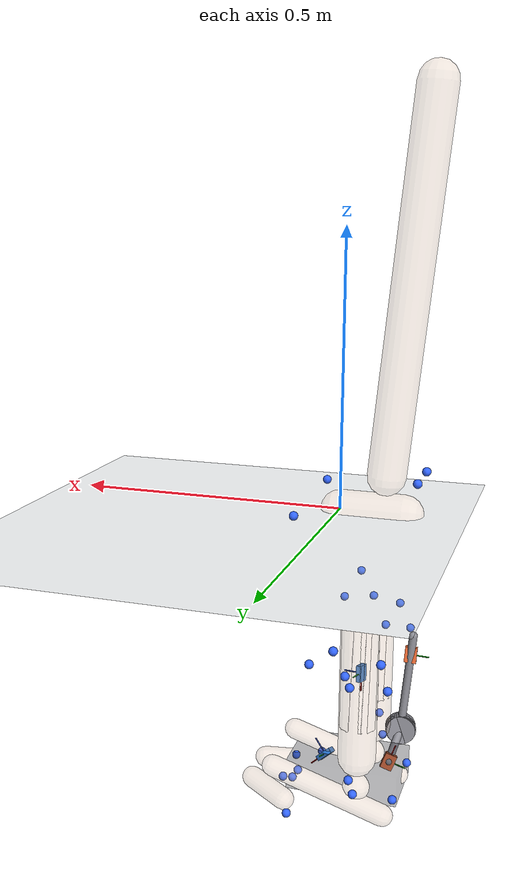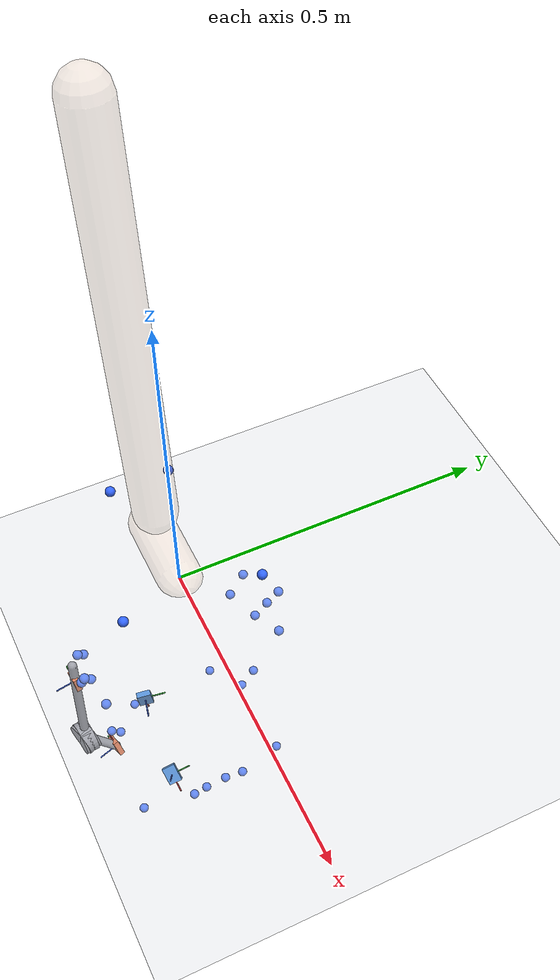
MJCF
<mujoco model="AB27">
  <compiler angle="radian" autolimits="true"/>
  <option timestep="0.005" gravity="0 0 -9.81"><flag contact="disable"/></option>
  <visual><global offwidth="1600" offheight="1200"/>
    <headlight ambient="0.55 0.55 0.55" diffuse="0.6 0.6 0.6"/></visual>
  <default><joint limited="false" damping="0"/><geom contype="0" conaffinity="0"/></default>
  <asset>
    <texture name="grid" type="2d" builtin="checker" rgb1="0.75 0.77 0.8" rgb2="0.85 0.87 0.9" width="512" height="512"/>
    <material name="grid" texture="grid" texrepeat="2 2" texuniform="true"/>
    <material name="skin" rgba="0.85 0.72 0.62 0.28"/>
  </asset>
  <worldbody>
    <light pos="0 0 4" dir="0 0 -1"/>
    <geom name="floor" type="plane" size="0 0 0.05" material="grid"/>
    <body name="pelvis" pos="0 0 0" quat="1 0 0 0">
      <joint name="pelvis_tx" type="slide" axis="1 0 0"/>
      <joint name="pelvis_ty" type="slide" axis="0 0 1"/>
      <joint name="pelvis_tz" type="slide" axis="0 -1 0"/>
      <joint name="pelvis_tilt" type="hinge" axis="0 -1 0"/>
      <joint name="pelvis_list" type="hinge" axis="1 0 0"/>
      <joint name="pelvis_rotation" type="hinge" axis="0 0 1"/>
      <inertial pos="-0.058046514 0 0" mass="11.385" diaginertia="0.11385026 0.11385026 0.11385026"/>
      <geom type="capsule" fromto="0 0 0 -0.11609303 0 0" size="0.035" material="skin" mass="0"/>
      <site name="m_R_ASIS" pos="0.052128746 -0.10849604 0.023263242" size="0.008" rgba="0.2 0.4 1 1" group="2"/>
      <site name="m_L_ASIS" pos="0.055594639 0.11089393 0.011455471" size="0.008" rgba="0.2 0.4 1 1" group="2"/>
      <site name="m_L_PSIS" pos="-0.1456863 0.047470997 0.070045221" size="0.008" rgba="0.2 0.4 1 1" group="2"/>
      <site name="m_R_PSIS" pos="-0.14553334 -0.047669934 0.068743078" size="0.008" rgba="0.2 0.4 1 1" group="2"/>
      <body name="femur_r" pos="-0.058046514 -0.068555643 -0.054269796" quat="1 0 0 0">
        <joint name="hip_flexion_r" type="hinge" axis="0 -1 0"/>
        <joint name="hip_adduction_r" type="hinge" axis="1 0 0"/>
        <joint name="hip_rotation_r" type="hinge" axis="0 0 1"/>
        <inertial pos="0 0 -0.16503786" mass="8.99182" diaginertia="0.08991821 0.08991821 0.08991821"/>
        <geom type="capsule" fromto="0 0 0 0 0 -0.33007572" size="0.035" material="skin" mass="0"/>
        <site name="m_R_Thigh_Upper" pos="0.052900902 -0.10512883 -0.12094729" size="0.008" rgba="0.2 0.4 1 1" group="2"/>
        <site name="m_R_Thigh_Front" pos="0.081215461 -0.085263008 -0.17224676" size="0.008" rgba="0.2 0.4 1 1" group="2"/>
        <site name="m_R_Thigh_Rear" pos="0.026873185 -0.10703871 -0.17157331" size="0.008" rgba="0.2 0.4 1 1" group="2"/>
        <site name="m_R_Knee_Lat" pos="0.00083167959 -0.072767124 -0.40669497" size="0.008" rgba="0.2 0.4 1 1" group="2"/>
        <body name="tibia_r" pos="0 0 0" quat="1 0 0 0">
<geom name="gt_shank_axis_x" type="capsule" size="0.0012" fromto="0.02690 -0.00820 -0.29580 0.02550 -0.00355 -0.33046" rgba="1 0.1 0.1 1" contype="0" conaffinity="0" mass="0"/>
<geom name="gt_shank_axis_y" type="capsule" size="0.0012" fromto="0.02690 -0.00820 -0.29580 0.03470 0.02566 -0.29157" rgba="0.1 0.8 0.1 1" contype="0" conaffinity="0" mass="0"/>
<geom name="gt_shank_axis_z" type="capsule" size="0.0012" fromto="0.02690 -0.00820 -0.29580 0.06099 -0.01576 -0.29819" rgba="0.1 0.3 1 1" contype="0" conaffinity="0" mass="0"/>
<geom name="exo_shank_axis_x" type="capsule" size="0.0012" fromto="-0.05196 -0.10600 -0.28706 -0.05411 -0.10934 -0.25229" rgba="1 0.1 0.1 1" contype="0" conaffinity="0" mass="0"/>
<geom name="exo_shank_axis_y" type="capsule" size="0.0012" fromto="-0.05196 -0.10600 -0.28706 -0.08671 -0.10928 -0.28953" rgba="0.1 0.8 0.1 1" contype="0" conaffinity="0" mass="0"/>
<geom name="exo_shank_axis_z" type="capsule" size="0.0012" fromto="-0.05196 -0.10600 -0.28706 -0.04846 -0.14069 -0.29018" rgba="0.1 0.3 1 1" contype="0" conaffinity="0" mass="0"/>
<geom name="encoder_shank" type="cylinder" size="0.03 0.012" fromto="-0.03426 -0.12661 -0.45483 -0.03714 -0.10279 -0.45477" rgba="0.55 0.55 0.58 1" contype="0" conaffinity="0" mass="0"/>
<geom name="strut_shank" type="capsule" size="0.008" fromto="-0.03570 -0.11470 -0.45480 -0.05602 -0.10383 -0.24513" rgba="0.55 0.55 0.58 1" contype="0" conaffinity="0" mass="0"/>
          <joint name="knee_r_translation1" type="slide" axis="1 0 0"/>
          <joint name="knee_r_translation2" type="slide" axis="0 0 1"/>
          <joint name="knee_angle_r" type="hinge" axis="0 -1 0"/>
          <inertial pos="0 0 -0.19744877" mass="3.5841" diaginertia="0.035841031 0.035841031 0.035841031"/>
          <geom type="capsule" fromto="0 0 0 0 0 -0.39489754" size="0.035" material="skin" mass="0"/>
          <site name="m_R_Shank_Upper" pos="-0.028618852 -0.094809408 -0.17610498" size="0.008" rgba="0.2 0.4 1 1" group="2"/>
          <site name="m_R_Shank_Front" pos="-0.0031336685 -0.086145252 -0.22174559" size="0.008" rgba="0.2 0.4 1 1" group="2"/>
          <site name="m_R_Shank_Rear" pos="-0.053094801 -0.081168583 -0.21976924" size="0.008" rgba="0.2 0.4 1 1" group="2"/>
          <site name="m_R_Ankle_Lat" pos="-0.010603552 -0.054767977 -0.44354602" size="0.008" rgba="0.2 0.4 1 1" group="2"/>
          <site name="gt_shank_imu" type="box" size="0.016 0.012 0.005" pos="0.0269 -0.0082 -0.2958" quat="0.68172775 0.12351395 0.7203503 -0.032970024" rgba="0.16 0.47 0.84 1" group="1"/>
          <site name="exo_shank_imu" type="box" size="0.016 0.012 0.005" pos="-0.051956 -0.106 -0.287064" quat="0.43470134 0.52945193 -0.51398063 0.51627445" rgba="0.92 0.41 0.20 1" group="1"/>
          <body name="talus_r" pos="0 0 -0.45475614" quat="1 0 0 0">
            <joint name="ankle_angle_r" type="hinge" axis="-0.10501355 -0.97912632 -0.17402245"/>
            <inertial pos="0 0 0" mass="0.0966717" diaginertia="0.00096671695 0.00096671695 0.00096671695"/>
            <geom type="sphere" size="0.025" material="skin" mass="0"/>
            <body name="calcn_r" pos="-0.051577807 -0.0083759736 -0.044365163" quat="1 0 0 0">
<geom name="gt_foot_axis_x" type="capsule" size="0.0012" fromto="0.14400 0.00960 0.02340 0.17041 0.01429 0.00092" rgba="1 0.1 0.1 1" contype="0" conaffinity="0" mass="0"/>
<geom name="gt_foot_axis_y" type="capsule" size="0.0012" fromto="0.14400 0.00960 0.02340 0.14761 0.04259 0.03451" rgba="0.1 0.8 0.1 1" contype="0" conaffinity="0" mass="0"/>
<geom name="gt_foot_axis_z" type="capsule" size="0.0012" fromto="0.14400 0.00960 0.02340 0.16668 -0.00110 0.04781" rgba="0.1 0.3 1 1" contype="0" conaffinity="0" mass="0"/>
<geom name="exo_foot_axis_x" type="capsule" size="0.0012" fromto="0.02932 -0.05779 -0.00784 0.01748 -0.06476 0.02435" rgba="1 0.1 0.1 1" contype="0" conaffinity="0" mass="0"/>
<geom name="exo_foot_axis_y" type="capsule" size="0.0012" fromto="0.02932 -0.05779 -0.00784 -0.00252 -0.06409 -0.02092" rgba="0.1 0.8 0.1 1" contype="0" conaffinity="0" mass="0"/>
<geom name="exo_foot_axis_z" type="capsule" size="0.0012" fromto="0.02932 -0.05779 -0.00784 0.03772 -0.09150 -0.01205" rgba="0.1 0.3 1 1" contype="0" conaffinity="0" mass="0"/>
<geom name="encoder_foot" type="cylinder" size="0.03 0.012" fromto="0.01928 -0.11776 0.04365 0.01232 -0.09484 0.04515" rgba="0.55 0.55 0.58 1" contype="0" conaffinity="0" mass="0"/>
<geom name="strut_foot" type="capsule" size="0.008" fromto="0.01580 -0.10630 0.04440 0.02932 -0.05779 -0.00784" rgba="0.55 0.55 0.58 1" contype="0" conaffinity="0" mass="0"/>
<geom name="shoe" type="box" pos="0.09888 0.00080 -0.00015" size="0.10897 0.06817 0.03000" rgba="0.15 0.15 0.18 0.35" contype="0" conaffinity="0" mass="0"/>
              <joint name="subtalar_angle_r" type="hinge" axis="0.78717961 0.12094949 0.60474746"/>
              <inertial pos="0.10493328 0 0.031479985" mass="1.2084" diaginertia="0.012083962 0.012083962 0.012083962"/>
              <geom type="capsule" fromto="0 0 0 0.20986657 0 0.062959971" size="0.02" material="skin" mass="0"/>
              <site name="m_R_Heel" pos="-0.017096098 0.0011897061 0.028407868" size="0.008" rgba="0.2 0.4 1 1" group="2"/>
              <site name="m_R_Toe_Lat" pos="0.16787386 -0.057761168 -0.010151365" size="0.008" rgba="0.2 0.4 1 1" group="2"/>
              <site name="m_R_Toe_Med" pos="0.18675358 0.058579294 0.0064987863" size="0.008" rgba="0.2 0.4 1 1" group="2"/>
              <site name="m_R_Toe_Tip" pos="0.19784758 0.030826674 0.023150082" size="0.008" rgba="0.2 0.4 1 1" group="2"/>
              <site name="gt_foot_imu" type="box" size="0.016 0.012 0.005" pos="0.144 0.0096 0.0234" quat="0.92124141 0.16915735 0.35018603 0.008355301" rgba="0.16 0.47 0.84 1" group="1"/>
              <site name="exo_foot_imu" type="box" size="0.016 0.012 0.005" pos="0.029323 -0.057786 -0.007844" quat="0.30059307 0.49041642 -0.56536274 0.59118568" rgba="0.92 0.41 0.20 1" group="1"/>
              <body name="toes_r" pos="0.18762071 -0.0011332795 -0.0020986657" quat="1 0 0 0">
                <joint name="mtp_angle_r" type="hinge" axis="-0.5809544 -0.81393611 0"/>
                <inertial pos="0.036306916 0.018363325 0.0062959971" mass="0.209391" diaginertia="0.0020939089 0.0020939089 0.0020939089"/>
                <geom type="capsule" fromto="0 0 0 0.072613833 0.03672665 0.012591994" size="0.02" material="skin" mass="0"/>
              </body>
            </body>
          </body>
        </body>
      </body>
      <body name="femur_l" pos="-0.058046514 0.068555643 -0.054269796" quat="1 0 0 0">
        <joint name="hip_flexion_l" type="hinge" axis="0 -1 0"/>
        <joint name="hip_adduction_l" type="hinge" axis="-1 0 0"/>
        <joint name="hip_rotation_l" type="hinge" axis="0 0 -1"/>
        <inertial pos="0 0 -0.16503786" mass="8.99182" diaginertia="0.08991821 0.08991821 0.08991821"/>
        <geom type="capsule" fromto="0 0 0 0 0 -0.33007572" size="0.035" material="skin" mass="0"/>
        <site name="m_L_Thigh_Upper" pos="0.021092888 0.11288699 -0.14325795" size="0.008" rgba="0.2 0.4 1 1" group="2"/>
        <site name="m_L_Thigh_Front" pos="0.068513846 0.091036969 -0.183141" size="0.008" rgba="0.2 0.4 1 1" group="2"/>
        <site name="m_L_Thigh_Rear" pos="0.0030222491 0.099667947 -0.19187895" size="0.008" rgba="0.2 0.4 1 1" group="2"/>
        <site name="m_L_Knee_Lat" pos="-0.001218152 0.071698705 -0.40245988" size="0.008" rgba="0.2 0.4 1 1" group="2"/>
        <body name="tibia_l" pos="0 0 0" quat="1 0 0 0">
          <joint name="knee_l_translation1" type="slide" axis="1 0 0"/>
          <joint name="knee_l_translation2" type="slide" axis="0 0 1"/>
          <joint name="knee_angle_l" type="hinge" axis="0 -1 0"/>
          <inertial pos="0 0 -0.19744877" mass="3.5841" diaginertia="0.035841031 0.035841031 0.035841031"/>
          <geom type="capsule" fromto="0 0 0 0 0 -0.39489754" size="0.035" material="skin" mass="0"/>
          <site name="m_L_Shank_Upper" pos="-0.054818248 0.081511764 -0.17033796" size="0.008" rgba="0.2 0.4 1 1" group="2"/>
          <site name="m_L_Shank_Front" pos="-0.0010183191 0.078244688 -0.22235564" size="0.008" rgba="0.2 0.4 1 1" group="2"/>
          <site name="m_L_Shank_Rear" pos="-0.06348825 0.05895013 -0.22809607" size="0.008" rgba="0.2 0.4 1 1" group="2"/>
          <site name="m_L_Ankle_Lat" pos="-0.00441784 0.048607869 -0.4427429" size="0.008" rgba="0.2 0.4 1 1" group="2"/>
          <body name="talus_l" pos="0 0 -0.45475614" quat="1 0 0 0">
            <joint name="ankle_angle_l" type="hinge" axis="0.10501355 -0.97912632 0.17402245"/>
            <inertial pos="0 0 0" mass="0.0966717" diaginertia="0.00096671695 0.00096671695 0.00096671695"/>
            <geom type="sphere" size="0.025" material="skin" mass="0"/>
            <body name="calcn_l" pos="-0.051577807 0.0083759736 -0.044365163" quat="1 0 0 0">
              <joint name="subtalar_angle_l" type="hinge" axis="-0.78717961 0.12094949 -0.60474746"/>
              <inertial pos="0.10493328 0 0.031479985" mass="1.2084" diaginertia="0.012083962 0.012083962 0.012083962"/>
              <geom type="capsule" fromto="0 0 0 0.20986657 0 0.062959971" size="0.02" material="skin" mass="0"/>
              <site name="m_L_Heel" pos="-0.018492237 0.0022820075 0.036842744" size="0.008" rgba="0.2 0.4 1 1" group="2"/>
              <site name="m_L_Toe_Lat" pos="0.16575562 0.055329829 0.0037705837" size="0.008" rgba="0.2 0.4 1 1" group="2"/>
              <site name="m_L_Toe_Med" pos="0.18685467 -0.057553827 0.011467707" size="0.008" rgba="0.2 0.4 1 1" group="2"/>
              <site name="m_L_Toe_Tip" pos="0.19700497 -0.02777047 0.027535185" size="0.008" rgba="0.2 0.4 1 1" group="2"/>
              <body name="toes_l" pos="0.18762071 0.0011332795 -0.0020986657" quat="1 0 0 0">
                <joint name="mtp_angle_l" type="hinge" axis="0.5809544 -0.81393611 0"/>
                <inertial pos="0.036306916 -0.018363325 0.0062959971" mass="0.209391" diaginertia="0.0020939089 0.0020939089 0.0020939089"/>
                <geom type="capsule" fromto="0 0 0 0.072613833 -0.03672665 0.012591994" size="0.02" material="skin" mass="0"/>
              </body>
            </body>
          </body>
        </body>
      </body>
      <body name="torso" pos="-0.082677284 0 0.066913591" quat="1 0 0 0">
        <joint name="lumbar_extension" type="hinge" axis="0 -1 0"/>
        <joint name="lumbar_bending" type="hinge" axis="1 0 0"/>
        <joint name="lumbar_rotation" type="hinge" axis="0 0 1"/>
        <inertial pos="-0.030928401 0 0.32990294" mass="33.0971" diaginertia="0.33097101 0.33097101 0.33097101"/>
        <geom type="capsule" fromto="0 0 0 -0.061856801 0 0.65980588" size="0.035" material="skin" mass="0"/>
      </body>
    </body>
  </worldbody>
  <sensor>
<accelerometer name="gt_foot_imu_acc" site="gt_foot_imu"/>
<gyro name="gt_foot_imu_gyr" site="gt_foot_imu"/>
<accelerometer name="exo_foot_imu_acc" site="exo_foot_imu"/>
<gyro name="exo_foot_imu_gyr" site="exo_foot_imu"/>
<accelerometer name="gt_shank_imu_acc" site="gt_shank_imu"/>
<gyro name="gt_shank_imu_gyr" site="gt_shank_imu"/>
<accelerometer name="exo_shank_imu_acc" site="exo_shank_imu"/>
<gyro name="exo_shank_imu_gyr" site="exo_shank_imu"/>
</sensor>
</mujoco>
